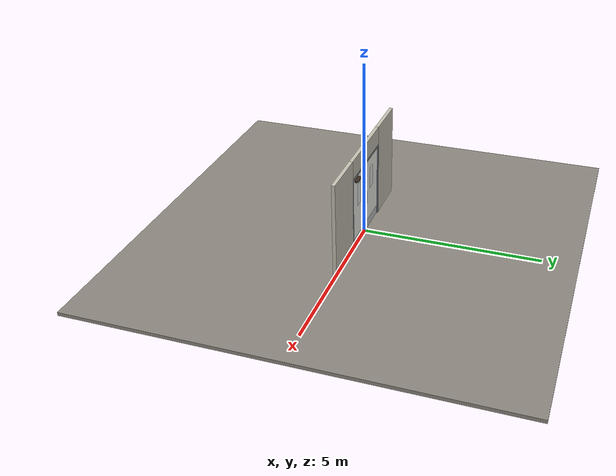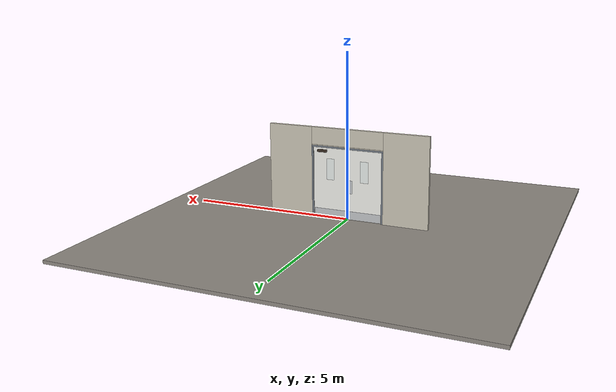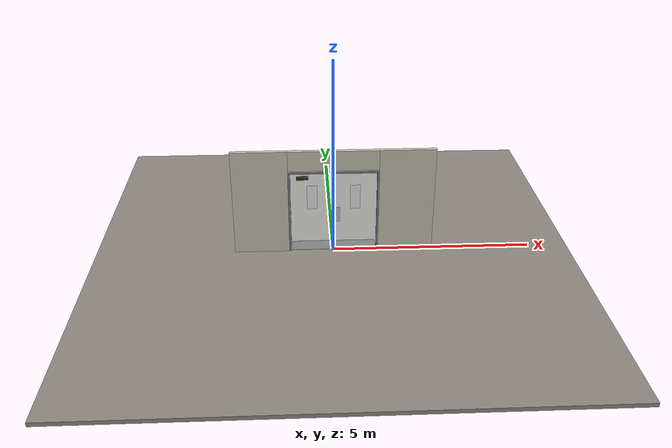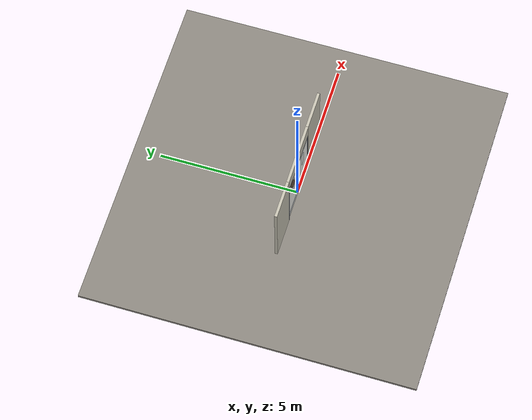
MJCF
<?xml version="1.0" ?>
<mujoco model="db0710_swing_double_simple">
  <compiler angle="radian" meshdir="../../hardware" texturedir="../../textures" autolimits="true" inertiafromgeom="false"/>
  <option timestep="0.002" integrator="implicitfast" cone="elliptic" impratio="10" noslip_iterations="3">
    <flag multiccd="enable"/>
  </option>
  <size memory="16M"/>
  <default>
    <geom condim="4" solref="0.005 1" solimp="0.95 0.99 0.001"/>
    <joint solreflimit="0.005 1" solimplimit="0.95 0.99 0.001"/>
    <tendon solreflimit="0.005 1"/>
    <equality solref="0.002 1"/>
  </default>
  <visual>
    <headlight ambient="0.4 0.4 0.4" diffuse="0.7 0.7 0.7" specular="0.2 0.2 0.2"/>
    <quality shadowsize="4096"/>
    <map znear="0.01" zfar="60"/>
  </visual>
  <asset>
    <mesh name="closer_body_fdc4667657" file="closer_body_fdc4667657.obj"/>
    <mesh name="hinge_e22b26c0c1" file="hinge_e22b26c0c1.obj"/>
    <mesh name="hinge_jamb_e1d088f8dc" file="hinge_jamb_e1d088f8dc.obj"/>
    <material name="mat_floor" rgba="0.55 0.53 0.5 1" specular="0.2" shininess="0.15" reflectance="0"/>
    <material name="mat_wall" rgba="0.78 0.76 0.7 1" specular="0.2" shininess="0.1" reflectance="0"/>
    <material name="mat_leaf_a" rgba="0.93 0.93 0.91 1" specular="0.2" shininess="0.34" reflectance="0"/>
    <material name="mat_glass" rgba="0.85 0.92 0.95 0.25" specular="0.2" shininess="0.95" reflectance="0.1"/>
    <material name="mat_hinge" rgba="0.65 0.66 0.68 1" specular="0.74" shininess="0.5" reflectance="0.36"/>
    <material name="mat_op_stainless" rgba="0.75 0.76 0.77 1" specular="0.8" shininess="0.65" reflectance="0.4"/>
    <material name="mat_closer" rgba="0.22 0.17 0.13 1" specular="0.8" shininess="0.6" reflectance="0.4"/>
    <material name="mat_kick" rgba="0.75 0.76 0.77 1" specular="0.8" shininess="0.65" reflectance="0.4"/>
    <material name="mat_leaf_b" rgba="0.93 0.93 0.91 1" specular="0.2" shininess="0.34" reflectance="0"/>
    <material name="mat_frame" rgba="0.45 0.48 0.52 1" specular="0.32" shininess="0.6" reflectance="0.08"/>
    <texture name="skybox" type="skybox" builtin="gradient" rgb1="0.6 0.7 0.85" rgb2="0.9 0.92 0.95" width="256" height="256"/>
  </asset>
  <worldbody>
    <light name="sun" pos="1.5 -2.5 4" dir="-0.3 0.5 -0.8" directional="true" diffuse="0.8 0.8 0.8" specular="0.3 0.3 0.3" castshadow="true"/>
    <light name="fill" pos="-1.5 2.5 3" dir="0.3 -0.5 -0.7" directional="true" diffuse="0.35 0.35 0.4" castshadow="false"/>
    <camera name="robot_view" pos="0 -2.637812 1.812087" xyaxes="1 0 0 0 0.26963 0.962964" fovy="52"/>
    <camera name="far_view" pos="0 2.637812 1.812087" xyaxes="-1 0 0 0 -0.26963 0.962964" fovy="52"/>
    <camera name="iso" pos="-2.004737 -2.215762 2.234138" xyaxes="0.741536 -0.670913 0 0.242917 0.268487 0.932151" fovy="46"/>
    <camera name="detail_handle" pos="0.2845 -0.8 1.296" xyaxes="0.97561 0.219512 0 -0.070934 0.315262 0.94635" fovy="38"/>
    <geom name="floor" type="box" size="6 6 0.05" pos="0 0 -0.05" material="mat_floor" group="0" contype="1" conaffinity="1" friction="0.8 0.005 0.0001" density="2400"/>
    <geom name="wall_left" type="box" size="0.68925 0.05 1.3735" pos="-1.81075 0 1.3735" material="mat_wall" group="0" contype="1" conaffinity="1" friction="0.6 0.005 0.0001" density="800"/>
    <geom name="wall_right" type="box" size="0.68925 0.05 1.3735" pos="1.81075 0 1.3735" material="mat_wall" group="0" contype="1" conaffinity="1" friction="0.6 0.005 0.0001" density="800"/>
    <geom name="wall_header" type="box" size="1.1215 0.05 0.26" pos="0 0 2.487" material="mat_wall" group="0" contype="1" conaffinity="1" friction="0.6 0.005 0.0001" density="800"/>
    <geom name="hinge_0_jamb" type="mesh" mesh="hinge_jamb_e1d088f8dc" pos="-1.0685 -0.029 0.259" material="mat_hinge" group="1" contype="0" conaffinity="0" density="7850"/>
    <geom name="hinge_1_jamb" type="mesh" mesh="hinge_jamb_e1d088f8dc" pos="-1.0685 -0.029 1.076" material="mat_hinge" group="1" contype="0" conaffinity="0" density="7850"/>
    <geom name="hinge_2_jamb" type="mesh" mesh="hinge_jamb_e1d088f8dc" pos="-1.0685 -0.029 1.963" material="mat_hinge" group="1" contype="0" conaffinity="0" density="7850"/>
    <geom name="hinge_0_jamb_2" type="mesh" mesh="hinge_jamb_e1d088f8dc" pos="1.0685 0.029 0.259" quat="0 0 0 1" material="mat_hinge" group="1" contype="0" conaffinity="0" density="7850"/>
    <geom name="hinge_1_jamb_2" type="mesh" mesh="hinge_jamb_e1d088f8dc" pos="1.0685 0.029 1.076" quat="0 0 0 1" material="mat_hinge" group="1" contype="0" conaffinity="0" density="7850"/>
    <geom name="hinge_2_jamb_2" type="mesh" mesh="hinge_jamb_e1d088f8dc" pos="1.0685 0.029 1.963" quat="0 0 0 1" material="mat_hinge" group="1" contype="0" conaffinity="0" density="7850"/>
    <geom name="jamb_l" type="box" size="0.025 0.05 1.0735" pos="-1.0965 0 1.0735" material="mat_frame" group="0" contype="1" conaffinity="1" friction="0.6 0.005 0.0001" density="300"/>
    <geom name="jamb_r" type="box" size="0.025 0.05 1.0735" pos="1.0965 0 1.0735" material="mat_frame" group="0" contype="1" conaffinity="1" friction="0.6 0.005 0.0001" density="300"/>
    <geom name="jamb_head" type="box" size="1.1215 0.05 0.025" pos="0 0 2.172" material="mat_frame" group="0" contype="1" conaffinity="1" friction="0.6 0.005 0.0001" density="300"/>
    <geom name="head_stud" type="box" size="1.1215 0.05 0.015" pos="0 0 2.212" material="mat_wall" group="0" contype="1" conaffinity="1" friction="0.6 0.005 0.0001" density="500"/>
    <site name="approach_point" pos="0 -1.5 0" quat="1 0 0 0" size="0.05" rgba="0.2 0.9 0.2 0.5" group="4"/>
    <site name="goal_point" pos="0 1.5 0" quat="1 0 0 0" size="0.05" rgba="0.2 0.9 0.2 0.5" group="4"/>
    <site name="door_plane_center" pos="0 0 1.0735" quat="1 0 0 0" size="0.02" rgba="0.2 0.9 0.2 0.5" group="4"/>
    <site name="approach_point_2" pos="0 -1.5 0" quat="1 0 0 0" size="0.05" rgba="0.2 0.9 0.2 0.5" group="4"/>
    <site name="goal_point_2" pos="0 1.5 0" quat="1 0 0 0" size="0.05" rgba="0.2 0.9 0.2 0.5" group="4"/>
    <site name="door_plane_center_2" pos="0 0 1.0735" quat="1 0 0 0" size="0.02" rgba="0.2 0.9 0.2 0.5" group="4"/>
    <site name="approach_point_3" pos="0 -1.5 0" quat="1 0 0 0" size="0.05" rgba="0.2 0.9 0.2 0.5" group="4"/>
    <site name="goal_point_3" pos="0 1.5 0" quat="1 0 0 0" size="0.05" rgba="0.2 0.9 0.2 0.5" group="4"/>
    <site name="door_plane_center_3" pos="0 0 1.0735" quat="1 0 0 0" size="0.02" rgba="0.2 0.9 0.2 0.5" group="4"/>
    <body name="leaf_a" pos="-1.0715 0 0">
      <inertial pos="0.497101 -0.011452 1.166999" mass="75.508567" quat="0.519669 0.520246 0.488808 -0.469419" diaginertia="6.611403363 37.718350514 44.216696333"/>
      <joint name="leaf_a_hinge" type="hinge" axis="0 0 -1" pos="0.003 -0.029 0" limited="true" range="0 1.570796" solreflimit="0.02 1" damping="12.49954" frictionloss="2.474861" stiffness="14.845973" springref="-1.978988" armature="0.02"/>
      <geom name="leaf_a_slab" type="box" size="0.5335 0.022 1.067" pos="0.5365 0 1.076" material="mat_leaf_a" group="0" contype="1" conaffinity="1" friction="0.35 0.005 0.0001" density="1"/>
      <geom name="leaf_a_glass_0" type="box" size="0.125 0.0228 0.3201" pos="0.5365 0 1.5028" material="mat_glass" group="1" contype="0" conaffinity="0" density="1"/>
      <geom name="hinge_0" type="mesh" mesh="hinge_e22b26c0c1" pos="0.003 -0.029 0.259" material="mat_hinge" group="1" contype="0" conaffinity="0" density="7850"/>
      <geom name="hinge_1" type="mesh" mesh="hinge_e22b26c0c1" pos="0.003 -0.029 1.076" material="mat_hinge" group="1" contype="0" conaffinity="0" density="7850"/>
      <geom name="hinge_2" type="mesh" mesh="hinge_e22b26c0c1" pos="0.003 -0.029 1.963" material="mat_hinge" group="1" contype="0" conaffinity="0" density="7850"/>
      <geom name="leaf_a_push_plate_p" type="box" size="0.05 0.0008 0.2" pos="0.965 0.0228 1.016" material="mat_op_stainless" group="1" contype="0" conaffinity="0" density="7900"/>
      <geom name="closer_body" type="mesh" mesh="closer_body_fdc4667657" pos="0.3 -0.022 2.054" quat="0.707107 0.707107 0 0" material="mat_closer" group="1" contype="0" conaffinity="0" density="2000"/>
      <geom name="closer_body_col" type="box" size="0.145 0.05 0.035" pos="0.3 -0.072 2.054" material="mat_closer" group="3" contype="1" conaffinity="1" rgba="0.8 0.3 0.3 0.25" friction="0.6 0.005 0.0001" density="2000"/>
      <geom name="kick_plate_n" type="box" size="0.5035 0.0008 0.125" pos="0.5365 -0.0228 0.144" material="mat_kick" group="2" contype="0" conaffinity="0" density="7900"/>
      <geom name="kick_plate_p" type="box" size="0.5035 0.0008 0.125" pos="0.5365 0.0228 0.144" material="mat_kick" group="2" contype="0" conaffinity="0" density="7900"/>
      <site name="leaf_a_push_plate_push_p" pos="0.965 0.022 1.016" quat="1 0 0 0" size="0.012" rgba="0.2 0.9 0.2 0.5" group="4"/>
      <site name="leaf_a_edge_mid" pos="1.07 0 1.067" quat="1 0 0 0" size="0.02" rgba="0.2 0.9 0.2 0.5" group="4"/>
    </body>
    <body name="leaf_b" pos="1.0715 0 0">
      <inertial pos="-0.497101 0.011452 1.166999" mass="75.508567" quat="-0.488808 -0.469419 -0.519669 0.520246" diaginertia="6.611403363 37.718350514 44.216696333"/>
      <joint name="leaf_b_hinge" type="hinge" axis="0 0 -1" pos="-0.003 0.029 0" limited="true" range="0 1.570796" solreflimit="0.02 1" damping="12.49954" frictionloss="2.474861" stiffness="14.845973" springref="-1.978988" armature="0.02"/>
      <geom name="leaf_b_slab" type="box" size="0.5335 0.022 1.067" pos="-0.5365 0 1.076" material="mat_leaf_b" group="0" contype="1" conaffinity="1" friction="0.35 0.005 0.0001" density="1"/>
      <geom name="leaf_b_glass_0" type="box" size="0.125 0.0228 0.3201" pos="-0.5365 0 1.5028" material="mat_glass" group="1" contype="0" conaffinity="0" density="1"/>
      <geom name="hinge_0_2" type="mesh" mesh="hinge_e22b26c0c1" pos="-0.003 0.029 0.259" quat="0 0 0 1" material="mat_hinge" group="1" contype="0" conaffinity="0" density="7850"/>
      <geom name="hinge_1_2" type="mesh" mesh="hinge_e22b26c0c1" pos="-0.003 0.029 1.076" quat="0 0 0 1" material="mat_hinge" group="1" contype="0" conaffinity="0" density="7850"/>
      <geom name="hinge_2_2" type="mesh" mesh="hinge_e22b26c0c1" pos="-0.003 0.029 1.963" quat="0 0 0 1" material="mat_hinge" group="1" contype="0" conaffinity="0" density="7850"/>
      <geom name="leaf_b_push_plate_n" type="box" size="0.05 0.0008 0.2" pos="-0.965 -0.0228 1.016" material="mat_op_stainless" group="1" contype="0" conaffinity="0" density="7900"/>
      <geom name="closer_body_2" type="mesh" mesh="closer_body_fdc4667657" pos="-0.3 0.022 2.054" quat="0 0 0.707107 0.707107" material="mat_closer" group="1" contype="0" conaffinity="0" density="2000"/>
      <geom name="closer_body_col_2" type="box" size="0.145 0.05 0.035" pos="-0.3 0.072 2.054" material="mat_closer" group="3" contype="1" conaffinity="1" rgba="0.8 0.3 0.3 0.25" friction="0.6 0.005 0.0001" density="2000"/>
      <geom name="kick_plate_n_2" type="box" size="0.5035 0.0008 0.125" pos="-0.5365 -0.0228 0.144" material="mat_kick" group="2" contype="0" conaffinity="0" density="7900"/>
      <geom name="kick_plate_p_2" type="box" size="0.5035 0.0008 0.125" pos="-0.5365 0.0228 0.144" material="mat_kick" group="2" contype="0" conaffinity="0" density="7900"/>
      <site name="leaf_b_push_plate_push_n" pos="-0.965 -0.022 1.016" quat="1 0 0 0" size="0.012" rgba="0.2 0.9 0.2 0.5" group="4"/>
      <site name="leaf_b_edge_mid" pos="-1.07 0 1.067" quat="1 0 0 0" size="0.02" rgba="0.2 0.9 0.2 0.5" group="4"/>
    </body>
  </worldbody>
  <sensor>
    <jointpos name="leaf_a_hinge_pos" joint="leaf_a_hinge"/>
    <jointvel name="leaf_a_hinge_vel" joint="leaf_a_hinge"/>
    <jointpos name="leaf_b_hinge_pos" joint="leaf_b_hinge"/>
    <jointvel name="leaf_b_hinge_vel" joint="leaf_b_hinge"/>
  </sensor>
</mujoco>
